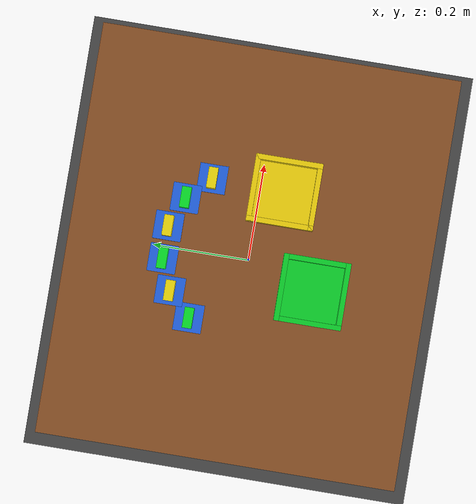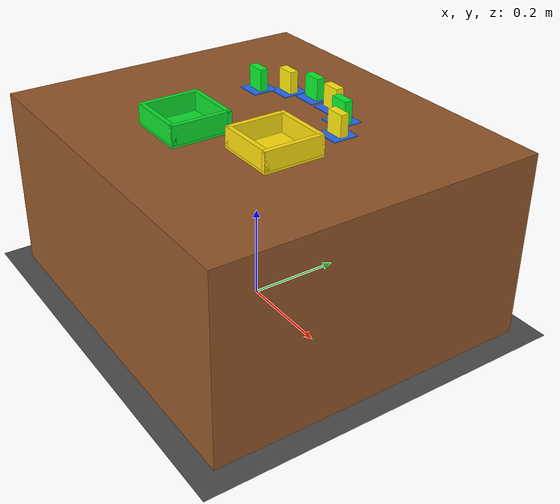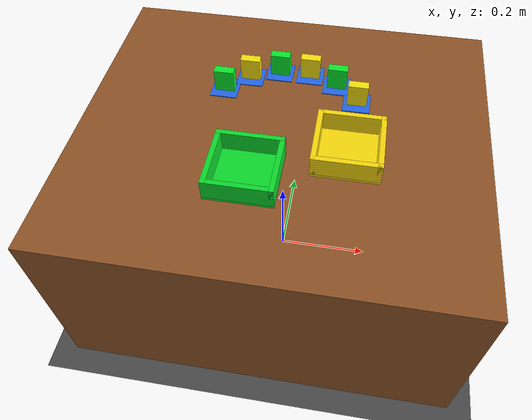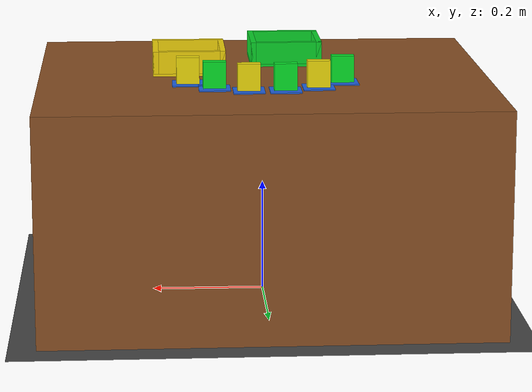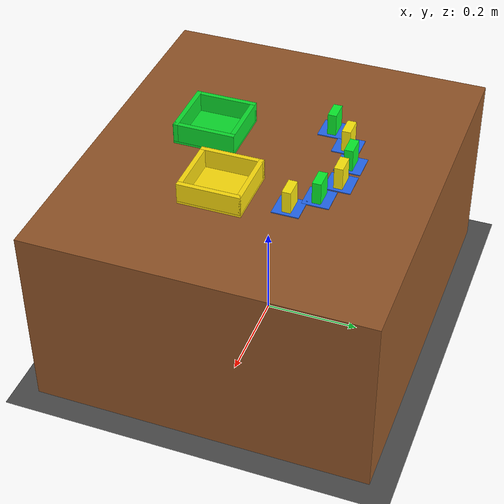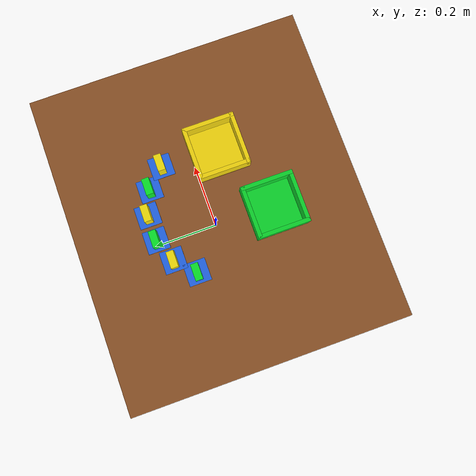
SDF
<?xml version="1.0"?>
<sdf version="1.8">
  <world name="task3_six_world">
    <gravity>0 0 -9.81</gravity>
    <plugin filename="libignition-gazebo-physics-system.so" name="ignition::gazebo::systems::Physics"/>
    <plugin filename="libignition-gazebo-user-commands-system.so" name="ignition::gazebo::systems::UserCommands"/>
    <plugin filename="libignition-gazebo-scene-broadcaster-system.so" name="ignition::gazebo::systems::SceneBroadcaster"/>
    <plugin filename="libignition-gazebo-sensors-system.so" name="ignition::gazebo::systems::Sensors">
      <render_engine>ogre2</render_engine>
    </plugin>
    <physics name="task3_six_physics" type="ode">
      <max_step_size>0.001</max_step_size>
      <real_time_factor>1.0</real_time_factor>
      <real_time_update_rate>1000</real_time_update_rate>
    </physics>
    <light name="sun" type="directional">
      <pose>0 0 1 0 0 0</pose>
      <cast_shadows>true</cast_shadows>
      <direction>-0.5 0.2 -1.0</direction>
      <diffuse>0.85 0.85 0.85 1</diffuse>
      <specular>0.25 0.25 0.25 1</specular>
    </light>
    <model name="ground_plane">
      <static>true</static>
      <link name="link">
        <collision name="collision">
          <geometry>
            <plane>
              <normal>0 0 1</normal>
              <size>20 20</size>
            </plane>
          </geometry>
        </collision>
        <visual name="visual">
          <geometry>
            <plane>
              <normal>0 0 1</normal>
              <size>20 20</size>
            </plane>
          </geometry>
          <material>
            <ambient>0.18 0.18 0.18 1</ambient>
            <diffuse>0.30 0.30 0.30 1</diffuse>
          </material>
        </visual>
      </link>
    </model>
    <model name="table">
      <static>true</static>
      <pose>0 0 0.20 0 0 0</pose>
      <link name="table_top">
        <collision name="collision">
          <geometry>
            <box>
              <size>0.80 0.70 0.40</size>
            </box>
          </geometry>
        </collision>
        <visual name="visual">
          <geometry>
            <box>
              <size>0.80 0.70 0.40</size>
            </box>
          </geometry>
          <material>
            <ambient>0.38 0.24 0.12 1</ambient>
            <diffuse>0.58 0.34 0.16 1</diffuse>
          </material>
        </visual>
      </link>
    </model>
    <!-- Six independent pickup squares. -->
    <model name="grid_p1">
      <static>true</static>
      <pose>0.136387 0.092863 0.402 0 0 0</pose>
      <link name="grid">
        <visual name="visual">
          <geometry>
            <box>
              <size>0.055 0.055 0.002</size>
            </box>
          </geometry>
          <material>
            <ambient>0.10 0.25 0.65 1</ambient>
            <diffuse>0.15 0.42 0.95 1</diffuse>
          </material>
        </visual>
      </link>
    </model>
    <model name="grid_p2">
      <static>true</static>
      <pose>0.091310 0.137432 0.402 0 0 0</pose>
      <link name="grid">
        <visual name="visual">
          <geometry>
            <box>
              <size>0.055 0.055 0.002</size>
            </box>
          </geometry>
          <material>
            <ambient>0.10 0.25 0.65 1</ambient>
            <diffuse>0.15 0.42 0.95 1</diffuse>
          </material>
        </visual>
      </link>
    </model>
    <model name="grid_p3">
      <static>true</static>
      <pose>0.032755 0.161716 0.402 0 0 0</pose>
      <link name="grid">
        <visual name="visual">
          <geometry>
            <box>
              <size>0.055 0.055 0.002</size>
            </box>
          </geometry>
          <material>
            <ambient>0.10 0.25 0.65 1</ambient>
            <diffuse>0.15 0.42 0.95 1</diffuse>
          </material>
        </visual>
      </link>
    </model>
    <model name="grid_p4">
      <static>true</static>
      <pose>-0.030635 0.162131 0.402 0 0 0</pose>
      <link name="grid">
        <visual name="visual">
          <geometry>
            <box>
              <size>0.055 0.055 0.002</size>
            </box>
          </geometry>
          <material>
            <ambient>0.10 0.25 0.65 1</ambient>
            <diffuse>0.15 0.42 0.95 1</diffuse>
          </material>
        </visual>
      </link>
    </model>
    <model name="grid_p5">
      <static>true</static>
      <pose>-0.089503 0.138615 0.402 0 0 0</pose>
      <link name="grid">
        <visual name="visual">
          <geometry>
            <box>
              <size>0.055 0.055 0.002</size>
            </box>
          </geometry>
          <material>
            <ambient>0.10 0.25 0.65 1</ambient>
            <diffuse>0.15 0.42 0.95 1</diffuse>
          </material>
        </visual>
      </link>
    </model>
    <model name="grid_p6">
      <static>true</static>
      <pose>-0.135160 0.094640 0.402 0 0 0</pose>
      <link name="grid">
        <visual name="visual">
          <geometry>
            <box>
              <size>0.055 0.055 0.002</size>
            </box>
          </geometry>
          <material>
            <ambient>0.10 0.25 0.65 1</ambient>
            <diffuse>0.15 0.42 0.95 1</diffuse>
          </material>
        </visual>
      </link>
    </model>
    <!-- Yellow collection region, with room for three 25 mm blocks. -->
    <model name="yellow_region">
      <static>true</static>
      <pose>0.131557 -0.047883 0.40 0 0 0</pose>
      <link name="floor">
        <collision name="collision">
          <geometry>
            <box>
              <size>0.13 0.13 0.01</size>
            </box>
          </geometry>
        </collision>
        <visual name="visual">
          <geometry>
            <box>
              <size>0.13 0.13 0.01</size>
            </box>
          </geometry>
          <material>
            <ambient>0.85 0.65 0.02 1</ambient>
            <diffuse>1.0 0.88 0.05 1</diffuse>
          </material>
        </visual>
      </link>
      <link name="wall_x_pos">
        <pose>0.06 0 0.025 0 0 0</pose>
        <collision name="collision">
          <geometry>
            <box>
              <size>0.01 0.13 0.04</size>
            </box>
          </geometry>
        </collision>
        <visual name="visual">
          <geometry>
            <box>
              <size>0.01 0.13 0.04</size>
            </box>
          </geometry>
          <material>
            <ambient>0.85 0.65 0.02 1</ambient>
            <diffuse>1.0 0.88 0.05 1</diffuse>
          </material>
        </visual>
      </link>
      <link name="wall_x_neg">
        <pose>-0.06 0 0.025 0 0 0</pose>
        <collision name="collision">
          <geometry>
            <box>
              <size>0.01 0.13 0.04</size>
            </box>
          </geometry>
        </collision>
        <visual name="visual">
          <geometry>
            <box>
              <size>0.01 0.13 0.04</size>
            </box>
          </geometry>
          <material>
            <ambient>0.85 0.65 0.02 1</ambient>
            <diffuse>1.0 0.88 0.05 1</diffuse>
          </material>
        </visual>
      </link>
      <link name="wall_y_pos">
        <pose>0 0.06 0.025 0 0 0</pose>
        <collision name="collision">
          <geometry>
            <box>
              <size>0.13 0.01 0.04</size>
            </box>
          </geometry>
        </collision>
        <visual name="visual">
          <geometry>
            <box>
              <size>0.13 0.01 0.04</size>
            </box>
          </geometry>
          <material>
            <ambient>0.85 0.65 0.02 1</ambient>
            <diffuse>1.0 0.88 0.05 1</diffuse>
          </material>
        </visual>
      </link>
      <link name="wall_y_neg">
        <pose>0 -0.06 0.025 0 0 0</pose>
        <collision name="collision">
          <geometry>
            <box>
              <size>0.13 0.01 0.04</size>
            </box>
          </geometry>
        </collision>
        <visual name="visual">
          <geometry>
            <box>
              <size>0.13 0.01 0.04</size>
            </box>
          </geometry>
          <material>
            <ambient>0.85 0.65 0.02 1</ambient>
            <diffuse>1.0 0.88 0.05 1</diffuse>
          </material>
        </visual>
      </link>
    </model>
    <!-- Green collection region. -->
    <model name="green_region">
      <static>true</static>
      <pose>-0.047883 -0.131557 0.40 0 0 0</pose>
      <link name="floor">
        <collision name="collision">
          <geometry>
            <box>
              <size>0.13 0.13 0.01</size>
            </box>
          </geometry>
        </collision>
        <visual name="visual">
          <geometry>
            <box>
              <size>0.13 0.13 0.01</size>
            </box>
          </geometry>
          <material>
            <ambient>0.02 0.48 0.10 1</ambient>
            <diffuse>0.05 0.88 0.18 1</diffuse>
          </material>
        </visual>
      </link>
      <link name="wall_x_pos">
        <pose>0.06 0 0.025 0 0 0</pose>
        <collision name="collision">
          <geometry>
            <box>
              <size>0.01 0.13 0.04</size>
            </box>
          </geometry>
        </collision>
        <visual name="visual">
          <geometry>
            <box>
              <size>0.01 0.13 0.04</size>
            </box>
          </geometry>
          <material>
            <ambient>0.02 0.48 0.10 1</ambient>
            <diffuse>0.05 0.88 0.18 1</diffuse>
          </material>
        </visual>
      </link>
      <link name="wall_x_neg">
        <pose>-0.06 0 0.025 0 0 0</pose>
        <collision name="collision">
          <geometry>
            <box>
              <size>0.01 0.13 0.04</size>
            </box>
          </geometry>
        </collision>
        <visual name="visual">
          <geometry>
            <box>
              <size>0.01 0.13 0.04</size>
            </box>
          </geometry>
          <material>
            <ambient>0.02 0.48 0.10 1</ambient>
            <diffuse>0.05 0.88 0.18 1</diffuse>
          </material>
        </visual>
      </link>
      <link name="wall_y_pos">
        <pose>0 0.06 0.025 0 0 0</pose>
        <collision name="collision">
          <geometry>
            <box>
              <size>0.13 0.01 0.04</size>
            </box>
          </geometry>
        </collision>
        <visual name="visual">
          <geometry>
            <box>
              <size>0.13 0.01 0.04</size>
            </box>
          </geometry>
          <material>
            <ambient>0.02 0.48 0.10 1</ambient>
            <diffuse>0.05 0.88 0.18 1</diffuse>
          </material>
        </visual>
      </link>
      <link name="wall_y_neg">
        <pose>0 -0.06 0.025 0 0 0</pose>
        <collision name="collision">
          <geometry>
            <box>
              <size>0.13 0.01 0.04</size>
            </box>
          </geometry>
        </collision>
        <visual name="visual">
          <geometry>
            <box>
              <size>0.13 0.01 0.04</size>
            </box>
          </geometry>
          <material>
            <ambient>0.02 0.48 0.10 1</ambient>
            <diffuse>0.05 0.88 0.18 1</diffuse>
          </material>
        </visual>
      </link>
    </model>
    <!-- Yellow blocks retain the orange_battery prefix required by the shared
         measured-pose server, but are rendered as true yellow blocks. -->
    <model name="orange_battery_1">
      <static>false</static>
      <pose>0.136387 0.092863 0.4250 0 0 0</pose>
      <link name="body">
        <inertial>
          <mass>0.08</mass>
          <inertia>
            <ixx>0.00001</ixx>
            <iyy>0.00001</iyy>
            <izz>0.00001</izz>
            <ixy>0</ixy>
            <ixz>0</ixz>
            <iyz>0</iyz>
          </inertia>
        </inertial>
        <collision name="collision">
          <geometry>
            <box>
              <size>0.040 0.018 0.050</size>
            </box>
          </geometry>
          <surface>
            <friction>
              <ode>
                <mu>2.0</mu>
                <mu2>2.0</mu2>
              </ode>
            </friction>
            <contact><ode><kp>200000</kp><kd>100</kd></ode></contact>
          </surface>
        </collision>
        <visual name="visual">
          <geometry>
            <box>
              <size>0.040 0.018 0.050</size>
            </box>
          </geometry>
          <material>
            <ambient>0.95 0.72 0.02 1</ambient>
            <diffuse>1.0 0.92 0.05 1</diffuse>
          </material>
        </visual>
      </link>
    </model>
    <model name="orange_battery_2">
      <static>false</static>
      <pose>0.032755 0.161716 0.4250 0 0 0</pose>
      <link name="body">
        <inertial>
          <mass>0.08</mass>
          <inertia>
            <ixx>0.00001</ixx>
            <iyy>0.00001</iyy>
            <izz>0.00001</izz>
            <ixy>0</ixy>
            <ixz>0</ixz>
            <iyz>0</iyz>
          </inertia>
        </inertial>
        <collision name="collision">
          <geometry>
            <box>
              <size>0.040 0.018 0.050</size>
            </box>
          </geometry>
          <surface>
            <friction>
              <ode>
                <mu>2.0</mu>
                <mu2>2.0</mu2>
              </ode>
            </friction>
            <contact><ode><kp>200000</kp><kd>100</kd></ode></contact>
          </surface>
        </collision>
        <visual name="visual">
          <geometry>
            <box>
              <size>0.040 0.018 0.050</size>
            </box>
          </geometry>
          <material>
            <ambient>0.95 0.72 0.02 1</ambient>
            <diffuse>1.0 0.92 0.05 1</diffuse>
          </material>
        </visual>
      </link>
    </model>
    <model name="orange_battery_3">
      <static>false</static>
      <pose>-0.089503 0.138615 0.4250 0 0 0</pose>
      <link name="body">
        <inertial>
          <mass>0.08</mass>
          <inertia>
            <ixx>0.00001</ixx>
            <iyy>0.00001</iyy>
            <izz>0.00001</izz>
            <ixy>0</ixy>
            <ixz>0</ixz>
            <iyz>0</iyz>
          </inertia>
        </inertial>
        <collision name="collision">
          <geometry>
            <box>
              <size>0.040 0.018 0.050</size>
            </box>
          </geometry>
          <surface>
            <friction>
              <ode>
                <mu>2.0</mu>
                <mu2>2.0</mu2>
              </ode>
            </friction>
            <contact><ode><kp>200000</kp><kd>100</kd></ode></contact>
          </surface>
        </collision>
        <visual name="visual">
          <geometry>
            <box>
              <size>0.040 0.018 0.050</size>
            </box>
          </geometry>
          <material>
            <ambient>0.95 0.72 0.02 1</ambient>
            <diffuse>1.0 0.92 0.05 1</diffuse>
          </material>
        </visual>
      </link>
    </model>
    <model name="green_can_1">
      <static>false</static>
      <pose>0.091310 0.137432 0.4250 0 0 0</pose>
      <link name="body">
        <inertial>
          <mass>0.08</mass>
          <inertia>
            <ixx>0.00001</ixx>
            <iyy>0.00001</iyy>
            <izz>0.00001</izz>
            <ixy>0</ixy>
            <ixz>0</ixz>
            <iyz>0</iyz>
          </inertia>
        </inertial>
        <collision name="collision">
          <geometry>
            <box>
              <size>0.040 0.018 0.050</size>
            </box>
          </geometry>
          <surface>
            <friction>
              <ode>
                <mu>2.0</mu>
                <mu2>2.0</mu2>
              </ode>
            </friction>
            <contact><ode><kp>200000</kp><kd>100</kd></ode></contact>
          </surface>
        </collision>
        <visual name="visual">
          <geometry>
            <box>
              <size>0.040 0.018 0.050</size>
            </box>
          </geometry>
          <material>
            <ambient>0.02 0.60 0.10 1</ambient>
            <diffuse>0.04 0.95 0.18 1</diffuse>
          </material>
        </visual>
      </link>
    </model>
    <model name="green_can_2">
      <static>false</static>
      <pose>-0.030635 0.162131 0.4250 0 0 0</pose>
      <link name="body">
        <inertial>
          <mass>0.08</mass>
          <inertia>
            <ixx>0.00001</ixx>
            <iyy>0.00001</iyy>
            <izz>0.00001</izz>
            <ixy>0</ixy>
            <ixz>0</ixz>
            <iyz>0</iyz>
          </inertia>
        </inertial>
        <collision name="collision">
          <geometry>
            <box>
              <size>0.040 0.018 0.050</size>
            </box>
          </geometry>
          <surface>
            <friction>
              <ode>
                <mu>2.0</mu>
                <mu2>2.0</mu2>
              </ode>
            </friction>
            <contact><ode><kp>200000</kp><kd>100</kd></ode></contact>
          </surface>
        </collision>
        <visual name="visual">
          <geometry>
            <box>
              <size>0.040 0.018 0.050</size>
            </box>
          </geometry>
          <material>
            <ambient>0.02 0.60 0.10 1</ambient>
            <diffuse>0.04 0.95 0.18 1</diffuse>
          </material>
        </visual>
      </link>
    </model>
    <model name="green_can_3">
      <static>false</static>
      <pose>-0.135160 0.094640 0.4250 0 0 0</pose>
      <link name="body">
        <inertial>
          <mass>0.08</mass>
          <inertia>
            <ixx>0.00001</ixx>
            <iyy>0.00001</iyy>
            <izz>0.00001</izz>
            <ixy>0</ixy>
            <ixz>0</ixz>
            <iyz>0</iyz>
          </inertia>
        </inertial>
        <collision name="collision">
          <geometry>
            <box>
              <size>0.040 0.018 0.050</size>
            </box>
          </geometry>
          <surface>
            <friction>
              <ode>
                <mu>2.0</mu>
                <mu2>2.0</mu2>
              </ode>
            </friction>
            <contact><ode><kp>200000</kp><kd>100</kd></ode></contact>
          </surface>
        </collision>
        <visual name="visual">
          <geometry>
            <box>
              <size>0.040 0.018 0.050</size>
            </box>
          </geometry>
          <material>
            <ambient>0.02 0.60 0.10 1</ambient>
            <diffuse>0.04 0.95 0.18 1</diffuse>
          </material>
        </visual>
      </link>
    </model>
    <model name="overhead_camera">
      <static>true</static>
      <pose>0 0 1.35 0 1.5708 0</pose>
      <link name="camera_link">
        <sensor name="rgb_camera" type="camera">
          <always_on>true</always_on>
          <update_rate>30</update_rate>
          <visualize>true</visualize>
          <topic>/task3_six/camera/image_raw</topic>
          <camera>
            <horizontal_fov>1.05</horizontal_fov>
            <image>
              <width>640</width>
              <height>480</height>
              <format>R8G8B8</format>
            </image>
            <clip>
              <near>0.1</near>
              <far>10.0</far>
            </clip>
          </camera>
        </sensor>
      </link>
    </model>
  </world>
</sdf>
